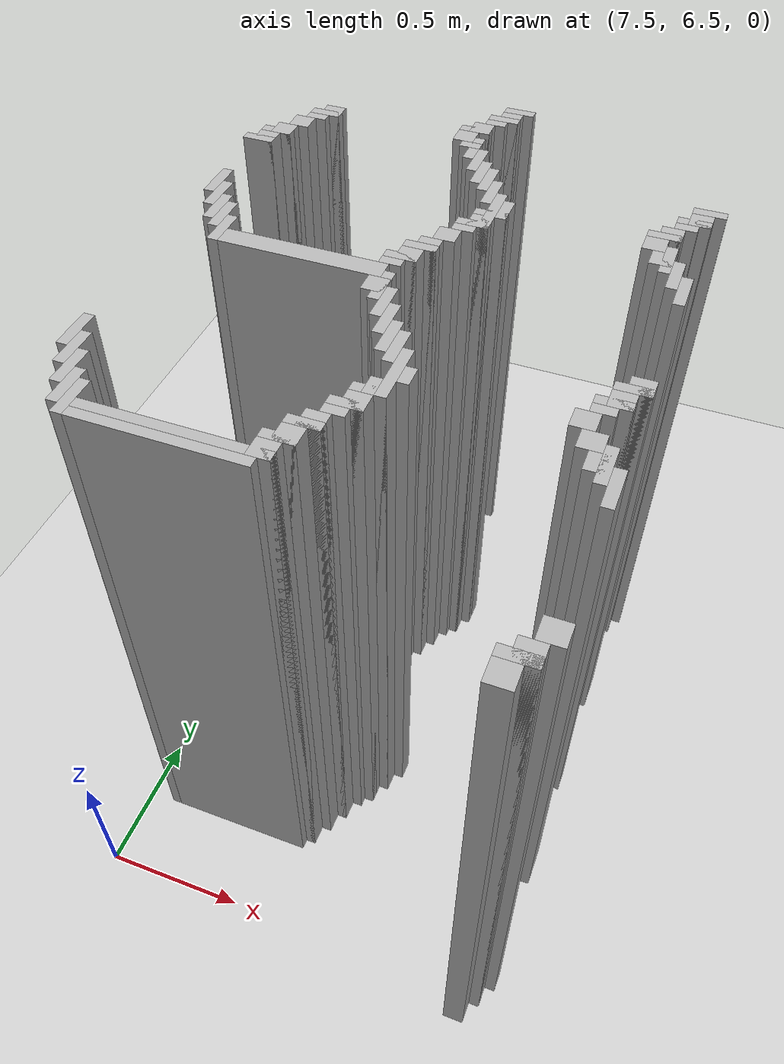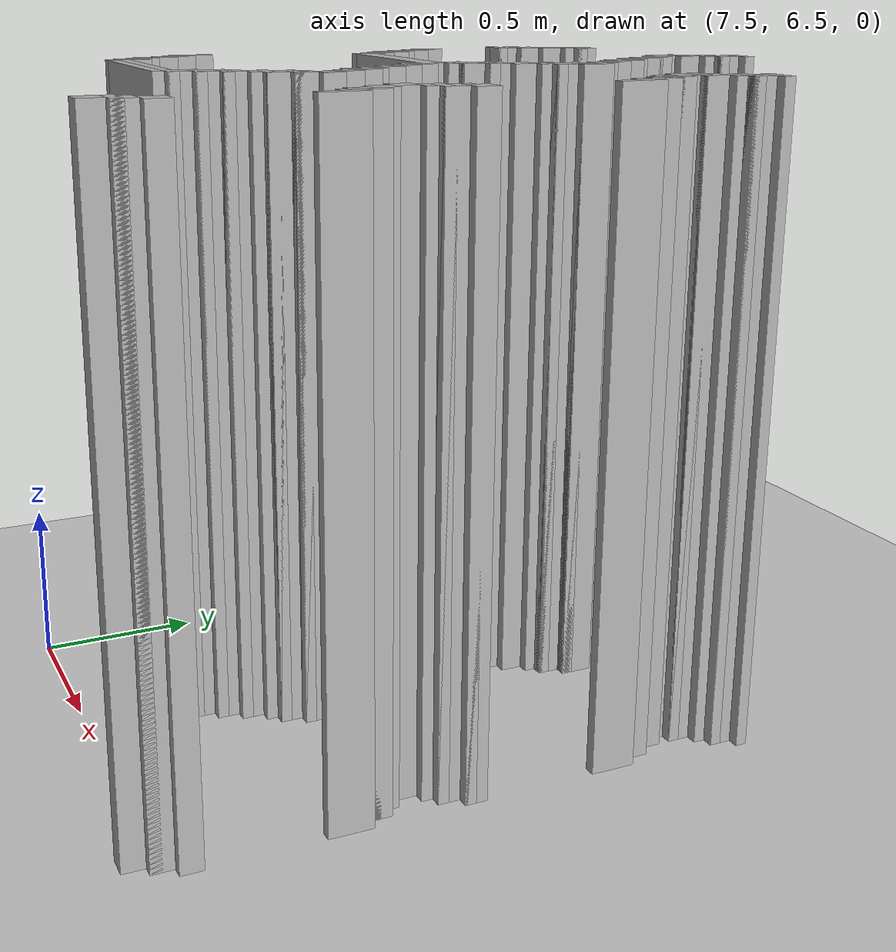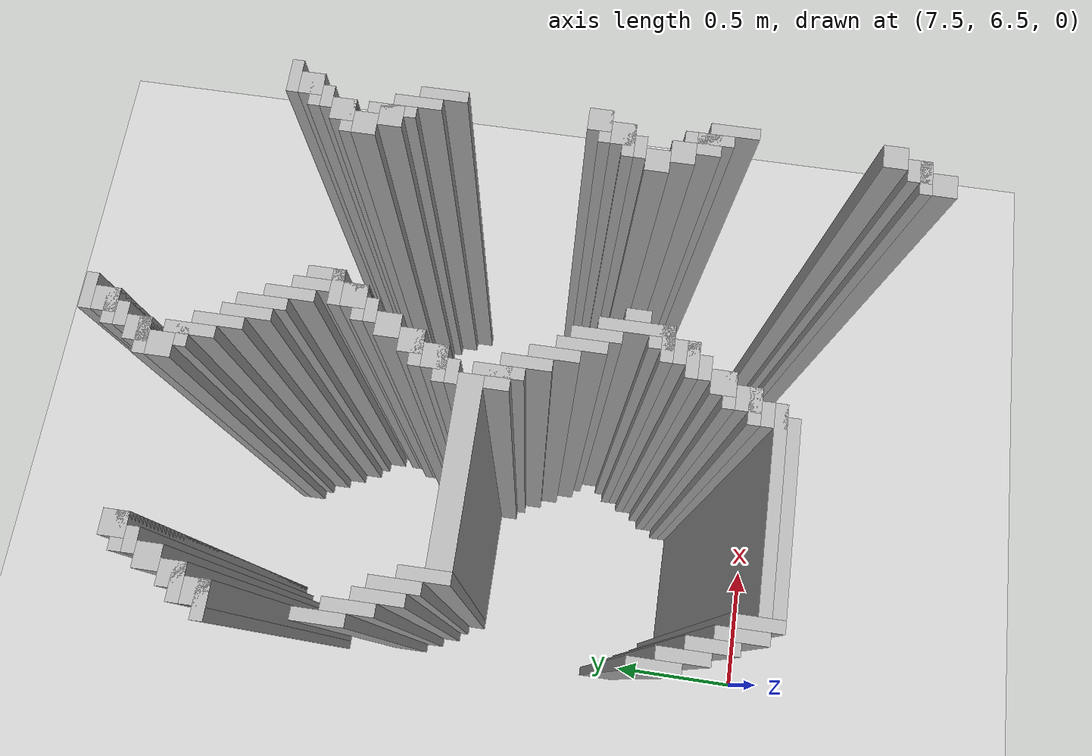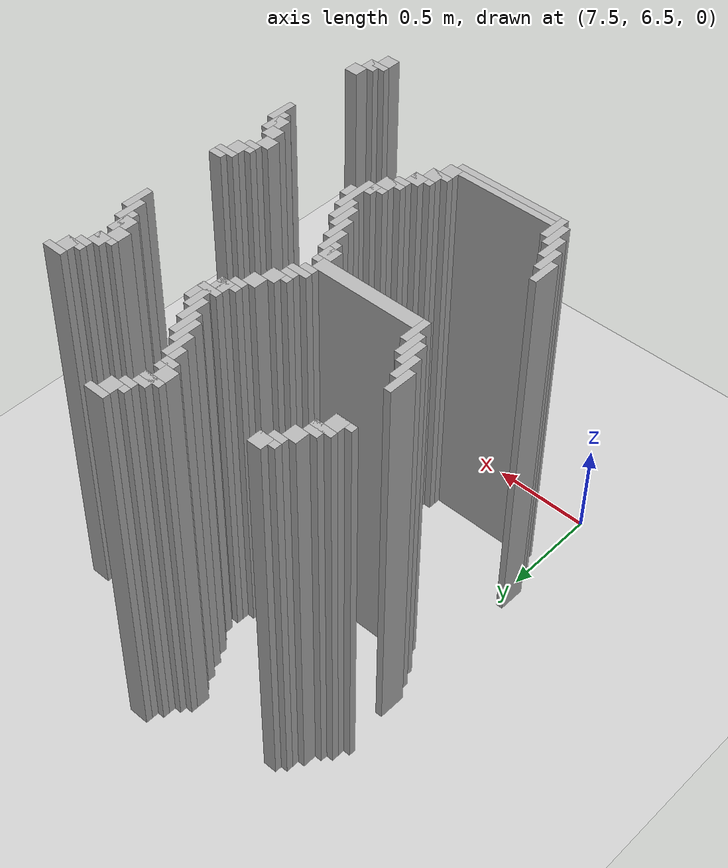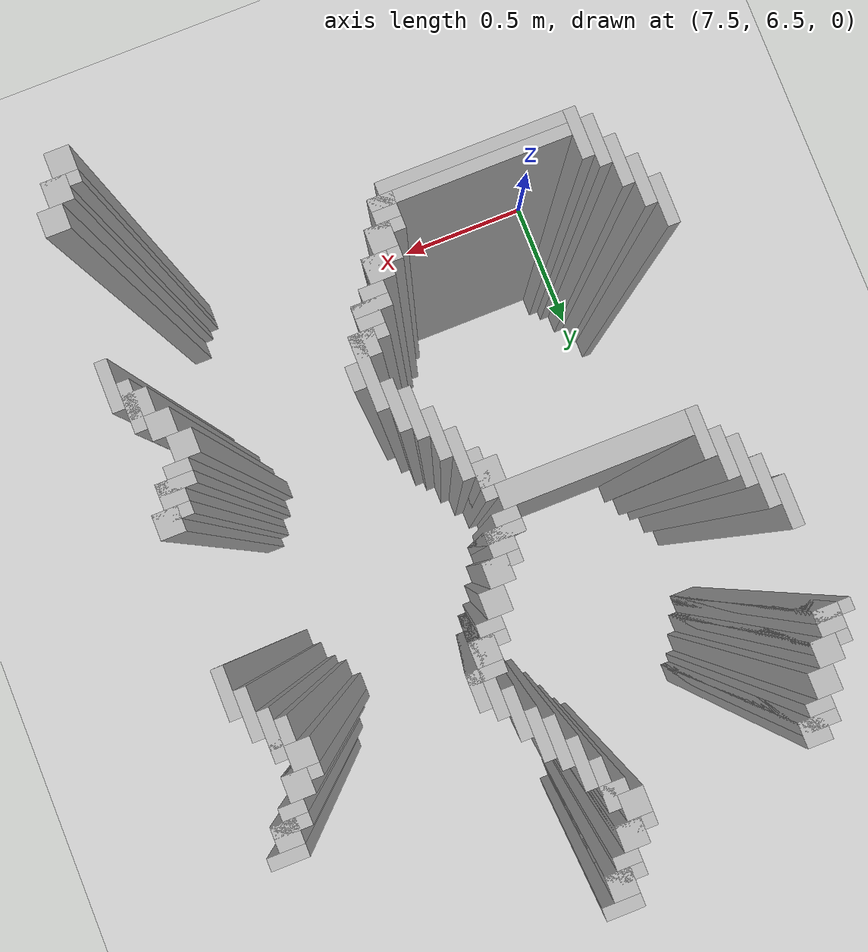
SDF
<sdf version="1.6">
 <world name="slam_world">
  <model name="ground_plane">
   <static>true</static>
   <link name="link">
    <collision name="collision">
     <geometry><plane><normal>0 0 1</normal><size>100 100</size></plane></geometry>
    </collision>
    <visual name="visual">
     <geometry><plane><normal>0 0 1</normal><size>100 100</size></plane></geometry>
     <material>
      <ambient>0.8 0.8 0.8 1</ambient>
      <diffuse>0.8 0.8 0.8 1</diffuse>
      <specular>0.8 0.8 0.8 1</specular>
     </material>
    </visual>
   </link>
  </model>
  <model name="wall_2944">
   <static>true</static>
   <pose>8.230858468677495 8.718097447795824 1.0 0 0 0</pose>
   <link name="link">
    <collision name="collision">
     <geometry><box><size>0.10440835266821345 0.03480278422273782 2.0</size></box></geometry>
    </collision>
    <visual name="visual">
     <geometry><box><size>0.10440835266821345 0.03480278422273782 2.0</size></box></geometry>
     <material><ambient>0.5 0.5 0.5 1</ambient><diffuse>0.7 0.7 0.7 1</diffuse></material>
    </visual>
   </link>
  </model>
  <model name="wall_2957">
   <static>true</static>
   <pose>8.213457076566124 8.665893271461716 1.0 0 0 0</pose>
   <link name="link">
    <collision name="collision">
     <geometry><box><size>0.06960556844547564 0.06960556844547564 2.0</size></box></geometry>
    </collision>
    <visual name="visual">
     <geometry><box><size>0.06960556844547564 0.06960556844547564 2.0</size></box></geometry>
     <material><ambient>0.5 0.5 0.5 1</ambient><diffuse>0.7 0.7 0.7 1</diffuse></material>
    </visual>
   </link>
  </model>
  <model name="wall_2969">
   <static>true</static>
   <pose>8.196055684454755 8.648491879350347 1.0 0 0 0</pose>
   <link name="link">
    <collision name="collision">
     <geometry><box><size>0.10440835266821345 0.03480278422273782 2.0</size></box></geometry>
    </collision>
    <visual name="visual">
     <geometry><box><size>0.10440835266821345 0.03480278422273782 2.0</size></box></geometry>
     <material><ambient>0.5 0.5 0.5 1</ambient><diffuse>0.7 0.7 0.7 1</diffuse></material>
    </visual>
   </link>
  </model>
  <model name="wall_2981">
   <static>true</static>
   <pose>8.178654292343387 8.61368909512761 1.0 0 0 0</pose>
   <link name="link">
    <collision name="collision">
     <geometry><box><size>0.06960556844547564 0.03480278422273782 2.0</size></box></geometry>
    </collision>
    <visual name="visual">
     <geometry><box><size>0.06960556844547564 0.03480278422273782 2.0</size></box></geometry>
     <material><ambient>0.5 0.5 0.5 1</ambient><diffuse>0.7 0.7 0.7 1</diffuse></material>
    </visual>
   </link>
  </model>
  <model name="wall_2993">
   <static>true</static>
   <pose>8.14385150812065 8.561484918793504 1.0 0 0 0</pose>
   <link name="link">
    <collision name="collision">
     <geometry><box><size>0.06960556844547564 0.06960556844547564 2.0</size></box></geometry>
    </collision>
    <visual name="visual">
     <geometry><box><size>0.06960556844547564 0.06960556844547564 2.0</size></box></geometry>
     <material><ambient>0.5 0.5 0.5 1</ambient><diffuse>0.7 0.7 0.7 1</diffuse></material>
    </visual>
   </link>
  </model>
  <model name="wall_3008">
   <static>true</static>
   <pose>8.12645011600928 8.544083526682135 1.0 0 0 0</pose>
   <link name="link">
    <collision name="collision">
     <geometry><box><size>0.10440835266821345 0.03480278422273782 2.0</size></box></geometry>
    </collision>
    <visual name="visual">
     <geometry><box><size>0.10440835266821345 0.03480278422273782 2.0</size></box></geometry>
     <material><ambient>0.5 0.5 0.5 1</ambient><diffuse>0.7 0.7 0.7 1</diffuse></material>
    </visual>
   </link>
  </model>
  <model name="wall_3020">
   <static>true</static>
   <pose>7.621809744779582 8.491879350348027 1.0 0 0 0</pose>
   <link name="link">
    <collision name="collision">
     <geometry><box><size>0.06960556844547564 0.06960556844547564 2.0</size></box></geometry>
    </collision>
    <visual name="visual">
     <geometry><box><size>0.06960556844547564 0.06960556844547564 2.0</size></box></geometry>
     <material><ambient>0.5 0.5 0.5 1</ambient><diffuse>0.7 0.7 0.7 1</diffuse></material>
    </visual>
   </link>
  </model>
  <model name="wall_3021">
   <static>true</static>
   <pose>8.109048723897912 8.491879350348027 1.0 0 0 0</pose>
   <link name="link">
    <collision name="collision">
     <geometry><box><size>0.06960556844547564 0.06960556844547564 2.0</size></box></geometry>
    </collision>
    <visual name="visual">
     <geometry><box><size>0.06960556844547564 0.06960556844547564 2.0</size></box></geometry>
     <material><ambient>0.5 0.5 0.5 1</ambient><diffuse>0.7 0.7 0.7 1</diffuse></material>
    </visual>
   </link>
  </model>
  <model name="wall_3033">
   <static>true</static>
   <pose>7.604408352668213 8.474477958236658 1.0 0 0 0</pose>
   <link name="link">
    <collision name="collision">
     <geometry><box><size>0.10440835266821345 0.03480278422273782 2.0</size></box></geometry>
    </collision>
    <visual name="visual">
     <geometry><box><size>0.10440835266821345 0.03480278422273782 2.0</size></box></geometry>
     <material><ambient>0.5 0.5 0.5 1</ambient><diffuse>0.7 0.7 0.7 1</diffuse></material>
    </visual>
   </link>
  </model>
  <model name="wall_3034">
   <static>true</static>
   <pose>8.161252900232018 8.422273781902552 1.0 0 0 0</pose>
   <link name="link">
    <collision name="collision">
     <geometry><box><size>0.03480278422273782 0.13921113689095127 2.0</size></box></geometry>
    </collision>
    <visual name="visual">
     <geometry><box><size>0.03480278422273782 0.13921113689095127 2.0</size></box></geometry>
     <material><ambient>0.5 0.5 0.5 1</ambient><diffuse>0.7 0.7 0.7 1</diffuse></material>
    </visual>
   </link>
  </model>
  <model name="wall_3048">
   <static>true</static>
   <pose>7.587006960556844 8.43967517401392 1.0 0 0 0</pose>
   <link name="link">
    <collision name="collision">
     <geometry><box><size>0.06960556844547564 0.03480278422273782 2.0</size></box></geometry>
    </collision>
    <visual name="visual">
     <geometry><box><size>0.06960556844547564 0.03480278422273782 2.0</size></box></geometry>
     <material><ambient>0.5 0.5 0.5 1</ambient><diffuse>0.7 0.7 0.7 1</diffuse></material>
    </visual>
   </link>
  </model>
  <model name="wall_3049">
   <static>true</static>
   <pose>8.14385150812065 8.43967517401392 1.0 0 0 0</pose>
   <link name="link">
    <collision name="collision">
     <geometry><box><size>0.06960556844547564 0.03480278422273782 2.0</size></box></geometry>
    </collision>
    <visual name="visual">
     <geometry><box><size>0.06960556844547564 0.03480278422273782 2.0</size></box></geometry>
     <material><ambient>0.5 0.5 0.5 1</ambient><diffuse>0.7 0.7 0.7 1</diffuse></material>
    </visual>
   </link>
  </model>
  <model name="wall_3065">
   <static>true</static>
   <pose>7.552204176334106 8.387470997679815 1.0 0 0 0</pose>
   <link name="link">
    <collision name="collision">
     <geometry><box><size>0.06960556844547564 0.06960556844547564 2.0</size></box></geometry>
    </collision>
    <visual name="visual">
     <geometry><box><size>0.06960556844547564 0.06960556844547564 2.0</size></box></geometry>
     <material><ambient>0.5 0.5 0.5 1</ambient><diffuse>0.7 0.7 0.7 1</diffuse></material>
    </visual>
   </link>
  </model>
  <model name="wall_3066">
   <static>true</static>
   <pose>8.196055684454755 8.352668213457076 1.0 0 0 0</pose>
   <link name="link">
    <collision name="collision">
     <geometry><box><size>0.03480278422273782 0.13921113689095127 2.0</size></box></geometry>
    </collision>
    <visual name="visual">
     <geometry><box><size>0.03480278422273782 0.13921113689095127 2.0</size></box></geometry>
     <material><ambient>0.5 0.5 0.5 1</ambient><diffuse>0.7 0.7 0.7 1</diffuse></material>
    </visual>
   </link>
  </model>
  <model name="wall_3082">
   <static>true</static>
   <pose>7.517401392111369 8.317865429234338 1.0 0 0 0</pose>
   <link name="link">
    <collision name="collision">
     <geometry><box><size>0.06960556844547564 0.06960556844547564 2.0</size></box></geometry>
    </collision>
    <visual name="visual">
     <geometry><box><size>0.06960556844547564 0.06960556844547564 2.0</size></box></geometry>
     <material><ambient>0.5 0.5 0.5 1</ambient><diffuse>0.7 0.7 0.7 1</diffuse></material>
    </visual>
   </link>
  </model>
  <model name="wall_3083">
   <static>true</static>
   <pose>8.230858468677495 8.2830626450116 1.0 0 0 0</pose>
   <link name="link">
    <collision name="collision">
     <geometry><box><size>0.03480278422273782 0.13921113689095127 2.0</size></box></geometry>
    </collision>
    <visual name="visual">
     <geometry><box><size>0.03480278422273782 0.13921113689095127 2.0</size></box></geometry>
     <material><ambient>0.5 0.5 0.5 1</ambient><diffuse>0.7 0.7 0.7 1</diffuse></material>
    </visual>
   </link>
  </model>
  <model name="wall_3099">
   <static>true</static>
   <pose>7.5 8.30046403712297 1.0 0 0 0</pose>
   <link name="link">
    <collision name="collision">
     <geometry><box><size>0.10440835266821345 0.03480278422273782 2.0</size></box></geometry>
    </collision>
    <visual name="visual">
     <geometry><box><size>0.10440835266821345 0.03480278422273782 2.0</size></box></geometry>
     <material><ambient>0.5 0.5 0.5 1</ambient><diffuse>0.7 0.7 0.7 1</diffuse></material>
    </visual>
   </link>
  </model>
  <model name="wall_3100">
   <static>true</static>
   <pose>8.265661252900232 8.248259860788863 1.0 0 0 0</pose>
   <link name="link">
    <collision name="collision">
     <geometry><box><size>0.03480278422273782 0.13921113689095127 2.0</size></box></geometry>
    </collision>
    <visual name="visual">
     <geometry><box><size>0.03480278422273782 0.13921113689095127 2.0</size></box></geometry>
     <material><ambient>0.5 0.5 0.5 1</ambient><diffuse>0.7 0.7 0.7 1</diffuse></material>
    </visual>
   </link>
  </model>
  <model name="wall_3101">
   <static>true</static>
   <pose>8.961716937354987 8.30046403712297 1.0 0 0 0</pose>
   <link name="link">
    <collision name="collision">
     <geometry><box><size>0.10440835266821345 0.03480278422273782 2.0</size></box></geometry>
    </collision>
    <visual name="visual">
     <geometry><box><size>0.10440835266821345 0.03480278422273782 2.0</size></box></geometry>
     <material><ambient>0.5 0.5 0.5 1</ambient><diffuse>0.7 0.7 0.7 1</diffuse></material>
    </visual>
   </link>
  </model>
  <model name="wall_3115">
   <static>true</static>
   <pose>7.48259860788863 8.248259860788863 1.0 0 0 0</pose>
   <link name="link">
    <collision name="collision">
     <geometry><box><size>0.06960556844547564 0.06960556844547564 2.0</size></box></geometry>
    </collision>
    <visual name="visual">
     <geometry><box><size>0.06960556844547564 0.06960556844547564 2.0</size></box></geometry>
     <material><ambient>0.5 0.5 0.5 1</ambient><diffuse>0.7 0.7 0.7 1</diffuse></material>
    </visual>
   </link>
  </model>
  <model name="wall_3116">
   <static>true</static>
   <pose>8.944315545243619 8.248259860788863 1.0 0 0 0</pose>
   <link name="link">
    <collision name="collision">
     <geometry><box><size>0.06960556844547564 0.06960556844547564 2.0</size></box></geometry>
    </collision>
    <visual name="visual">
     <geometry><box><size>0.06960556844547564 0.06960556844547564 2.0</size></box></geometry>
     <material><ambient>0.5 0.5 0.5 1</ambient><diffuse>0.7 0.7 0.7 1</diffuse></material>
    </visual>
   </link>
  </model>
  <model name="wall_3129">
   <static>true</static>
   <pose>7.465197215777262 8.230858468677495 1.0 0 0 0</pose>
   <link name="link">
    <collision name="collision">
     <geometry><box><size>0.10440835266821345 0.03480278422273782 2.0</size></box></geometry>
    </collision>
    <visual name="visual">
     <geometry><box><size>0.10440835266821345 0.03480278422273782 2.0</size></box></geometry>
     <material><ambient>0.5 0.5 0.5 1</ambient><diffuse>0.7 0.7 0.7 1</diffuse></material>
    </visual>
   </link>
  </model>
  <model name="wall_3130">
   <static>true</static>
   <pose>8.30046403712297 8.178654292343387 1.0 0 0 0</pose>
   <link name="link">
    <collision name="collision">
     <geometry><box><size>0.03480278422273782 0.13921113689095127 2.0</size></box></geometry>
    </collision>
    <visual name="visual">
     <geometry><box><size>0.03480278422273782 0.13921113689095127 2.0</size></box></geometry>
     <material><ambient>0.5 0.5 0.5 1</ambient><diffuse>0.7 0.7 0.7 1</diffuse></material>
    </visual>
   </link>
  </model>
  <model name="wall_3131">
   <static>true</static>
   <pose>8.92691415313225 8.230858468677495 1.0 0 0 0</pose>
   <link name="link">
    <collision name="collision">
     <geometry><box><size>0.10440835266821345 0.03480278422273782 2.0</size></box></geometry>
    </collision>
    <visual name="visual">
     <geometry><box><size>0.10440835266821345 0.03480278422273782 2.0</size></box></geometry>
     <material><ambient>0.5 0.5 0.5 1</ambient><diffuse>0.7 0.7 0.7 1</diffuse></material>
    </visual>
   </link>
  </model>
  <model name="wall_3144">
   <static>true</static>
   <pose>8.909512761020881 8.196055684454755 1.0 0 0 0</pose>
   <link name="link">
    <collision name="collision">
     <geometry><box><size>0.06960556844547564 0.03480278422273782 2.0</size></box></geometry>
    </collision>
    <visual name="visual">
     <geometry><box><size>0.06960556844547564 0.03480278422273782 2.0</size></box></geometry>
     <material><ambient>0.5 0.5 0.5 1</ambient><diffuse>0.7 0.7 0.7 1</diffuse></material>
    </visual>
   </link>
  </model>
  <model name="wall_3156">
   <static>true</static>
   <pose>8.335266821345707 8.074245939675174 1.0 0 0 0</pose>
   <link name="link">
    <collision name="collision">
     <geometry><box><size>0.03480278422273782 0.2088167053364269 2.0</size></box></geometry>
    </collision>
    <visual name="visual">
     <geometry><box><size>0.03480278422273782 0.2088167053364269 2.0</size></box></geometry>
     <material><ambient>0.5 0.5 0.5 1</ambient><diffuse>0.7 0.7 0.7 1</diffuse></material>
    </visual>
   </link>
  </model>
  <model name="wall_3157">
   <static>true</static>
   <pose>8.874709976798144 8.14385150812065 1.0 0 0 0</pose>
   <link name="link">
    <collision name="collision">
     <geometry><box><size>0.06960556844547564 0.06960556844547564 2.0</size></box></geometry>
    </collision>
    <visual name="visual">
     <geometry><box><size>0.06960556844547564 0.06960556844547564 2.0</size></box></geometry>
     <material><ambient>0.5 0.5 0.5 1</ambient><diffuse>0.7 0.7 0.7 1</diffuse></material>
    </visual>
   </link>
  </model>
  <model name="wall_3170">
   <static>true</static>
   <pose>8.370069605568444 8.091647331786543 1.0 0 0 0</pose>
   <link name="link">
    <collision name="collision">
     <geometry><box><size>0.03480278422273782 0.10440835266821345 2.0</size></box></geometry>
    </collision>
    <visual name="visual">
     <geometry><box><size>0.03480278422273782 0.10440835266821345 2.0</size></box></geometry>
     <material><ambient>0.5 0.5 0.5 1</ambient><diffuse>0.7 0.7 0.7 1</diffuse></material>
    </visual>
   </link>
  </model>
  <model name="wall_3171">
   <static>true</static>
   <pose>8.857308584686775 8.12645011600928 1.0 0 0 0</pose>
   <link name="link">
    <collision name="collision">
     <geometry><box><size>0.10440835266821345 0.03480278422273782 2.0</size></box></geometry>
    </collision>
    <visual name="visual">
     <geometry><box><size>0.10440835266821345 0.03480278422273782 2.0</size></box></geometry>
     <material><ambient>0.5 0.5 0.5 1</ambient><diffuse>0.7 0.7 0.7 1</diffuse></material>
    </visual>
   </link>
  </model>
  <model name="wall_3185">
   <static>true</static>
   <pose>8.839907192575406 8.074245939675174 1.0 0 0 0</pose>
   <link name="link">
    <collision name="collision">
     <geometry><box><size>0.06960556844547564 0.06960556844547564 2.0</size></box></geometry>
    </collision>
    <visual name="visual">
     <geometry><box><size>0.06960556844547564 0.06960556844547564 2.0</size></box></geometry>
     <material><ambient>0.5 0.5 0.5 1</ambient><diffuse>0.7 0.7 0.7 1</diffuse></material>
    </visual>
   </link>
  </model>
  <model name="wall_3198">
   <static>true</static>
   <pose>8.335266821345707 8.056844547563804 1.0 0 0 0</pose>
   <link name="link">
    <collision name="collision">
     <geometry><box><size>0.10440835266821345 0.03480278422273782 2.0</size></box></geometry>
    </collision>
    <visual name="visual">
     <geometry><box><size>0.10440835266821345 0.03480278422273782 2.0</size></box></geometry>
     <material><ambient>0.5 0.5 0.5 1</ambient><diffuse>0.7 0.7 0.7 1</diffuse></material>
    </visual>
   </link>
  </model>
  <model name="wall_3199">
   <static>true</static>
   <pose>8.892111368909513 8.004640371229698 1.0 0 0 0</pose>
   <link name="link">
    <collision name="collision">
     <geometry><box><size>0.03480278422273782 0.13921113689095127 2.0</size></box></geometry>
    </collision>
    <visual name="visual">
     <geometry><box><size>0.03480278422273782 0.13921113689095127 2.0</size></box></geometry>
     <material><ambient>0.5 0.5 0.5 1</ambient><diffuse>0.7 0.7 0.7 1</diffuse></material>
    </visual>
   </link>
  </model>
  <model name="wall_3211">
   <static>true</static>
   <pose>8.317865429234338 8.004640371229698 1.0 0 0 0</pose>
   <link name="link">
    <collision name="collision">
     <geometry><box><size>0.06960556844547564 0.06960556844547564 2.0</size></box></geometry>
    </collision>
    <visual name="visual">
     <geometry><box><size>0.06960556844547564 0.06960556844547564 2.0</size></box></geometry>
     <material><ambient>0.5 0.5 0.5 1</ambient><diffuse>0.7 0.7 0.7 1</diffuse></material>
    </visual>
   </link>
  </model>
  <model name="wall_3212">
   <static>true</static>
   <pose>8.874709976798144 8.004640371229698 1.0 0 0 0</pose>
   <link name="link">
    <collision name="collision">
     <geometry><box><size>0.06960556844547564 0.06960556844547564 2.0</size></box></geometry>
    </collision>
    <visual name="visual">
     <geometry><box><size>0.06960556844547564 0.06960556844547564 2.0</size></box></geometry>
     <material><ambient>0.5 0.5 0.5 1</ambient><diffuse>0.7 0.7 0.7 1</diffuse></material>
    </visual>
   </link>
  </model>
  <model name="wall_3223">
   <static>true</static>
   <pose>7.465197215777262 7.935034802784222 1.0 0 0 0</pose>
   <link name="link">
    <collision name="collision">
     <geometry><box><size>0.03480278422273782 0.13921113689095127 2.0</size></box></geometry>
    </collision>
    <visual name="visual">
     <geometry><box><size>0.03480278422273782 0.13921113689095127 2.0</size></box></geometry>
     <material><ambient>0.5 0.5 0.5 1</ambient><diffuse>0.7 0.7 0.7 1</diffuse></material>
    </visual>
   </link>
  </model>
  <model name="wall_3224">
   <static>true</static>
   <pose>8.30046403712297 7.987238979118329 1.0 0 0 0</pose>
   <link name="link">
    <collision name="collision">
     <geometry><box><size>0.10440835266821345 0.03480278422273782 2.0</size></box></geometry>
    </collision>
    <visual name="visual">
     <geometry><box><size>0.10440835266821345 0.03480278422273782 2.0</size></box></geometry>
     <material><ambient>0.5 0.5 0.5 1</ambient><diffuse>0.7 0.7 0.7 1</diffuse></material>
    </visual>
   </link>
  </model>
  <model name="wall_3225">
   <static>true</static>
   <pose>8.92691415313225 7.935034802784222 1.0 0 0 0</pose>
   <link name="link">
    <collision name="collision">
     <geometry><box><size>0.03480278422273782 0.13921113689095127 2.0</size></box></geometry>
    </collision>
    <visual name="visual">
     <geometry><box><size>0.03480278422273782 0.13921113689095127 2.0</size></box></geometry>
     <material><ambient>0.5 0.5 0.5 1</ambient><diffuse>0.7 0.7 0.7 1</diffuse></material>
    </visual>
   </link>
  </model>
  <model name="wall_3234">
   <static>true</static>
   <pose>8.2830626450116 7.952436194895592 1.0 0 0 0</pose>
   <link name="link">
    <collision name="collision">
     <geometry><box><size>0.06960556844547564 0.03480278422273782 2.0</size></box></geometry>
    </collision>
    <visual name="visual">
     <geometry><box><size>0.06960556844547564 0.03480278422273782 2.0</size></box></geometry>
     <material><ambient>0.5 0.5 0.5 1</ambient><diffuse>0.7 0.7 0.7 1</diffuse></material>
    </visual>
   </link>
  </model>
  <model name="wall_3241">
   <static>true</static>
   <pose>7.5 7.865429234338746 1.0 0 0 0</pose>
   <link name="link">
    <collision name="collision">
     <geometry><box><size>0.03480278422273782 0.13921113689095127 2.0</size></box></geometry>
    </collision>
    <visual name="visual">
     <geometry><box><size>0.03480278422273782 0.13921113689095127 2.0</size></box></geometry>
     <material><ambient>0.5 0.5 0.5 1</ambient><diffuse>0.7 0.7 0.7 1</diffuse></material>
    </visual>
   </link>
  </model>
  <model name="wall_3242">
   <static>true</static>
   <pose>8.248259860788863 7.900232018561485 1.0 0 0 0</pose>
   <link name="link">
    <collision name="collision">
     <geometry><box><size>0.06960556844547564 0.06960556844547564 2.0</size></box></geometry>
    </collision>
    <visual name="visual">
     <geometry><box><size>0.06960556844547564 0.06960556844547564 2.0</size></box></geometry>
     <material><ambient>0.5 0.5 0.5 1</ambient><diffuse>0.7 0.7 0.7 1</diffuse></material>
    </visual>
   </link>
  </model>
  <model name="wall_3243">
   <static>true</static>
   <pose>8.961716937354987 7.865429234338746 1.0 0 0 0</pose>
   <link name="link">
    <collision name="collision">
     <geometry><box><size>0.03480278422273782 0.13921113689095127 2.0</size></box></geometry>
    </collision>
    <visual name="visual">
     <geometry><box><size>0.03480278422273782 0.13921113689095127 2.0</size></box></geometry>
     <material><ambient>0.5 0.5 0.5 1</ambient><diffuse>0.7 0.7 0.7 1</diffuse></material>
    </visual>
   </link>
  </model>
  <model name="wall_3254">
   <static>true</static>
   <pose>7.534802784222737 7.795823665893272 1.0 0 0 0</pose>
   <link name="link">
    <collision name="collision">
     <geometry><box><size>0.03480278422273782 0.13921113689095127 2.0</size></box></geometry>
    </collision>
    <visual name="visual">
     <geometry><box><size>0.03480278422273782 0.13921113689095127 2.0</size></box></geometry>
     <material><ambient>0.5 0.5 0.5 1</ambient><diffuse>0.7 0.7 0.7 1</diffuse></material>
    </visual>
   </link>
  </model>
  <model name="wall_3255">
   <static>true</static>
   <pose>8.213457076566124 7.830626450116009 1.0 0 0 0</pose>
   <link name="link">
    <collision name="collision">
     <geometry><box><size>0.06960556844547564 0.06960556844547564 2.0</size></box></geometry>
    </collision>
    <visual name="visual">
     <geometry><box><size>0.06960556844547564 0.06960556844547564 2.0</size></box></geometry>
     <material><ambient>0.5 0.5 0.5 1</ambient><diffuse>0.7 0.7 0.7 1</diffuse></material>
    </visual>
   </link>
  </model>
  <model name="wall_3267">
   <static>true</static>
   <pose>7.569605568445476 7.761020881670533 1.0 0 0 0</pose>
   <link name="link">
    <collision name="collision">
     <geometry><box><size>0.03480278422273782 0.13921113689095127 2.0</size></box></geometry>
    </collision>
    <visual name="visual">
     <geometry><box><size>0.03480278422273782 0.13921113689095127 2.0</size></box></geometry>
     <material><ambient>0.5 0.5 0.5 1</ambient><diffuse>0.7 0.7 0.7 1</diffuse></material>
    </visual>
   </link>
  </model>
  <model name="wall_3268">
   <static>true</static>
   <pose>8.196055684454755 7.81322505800464 1.0 0 0 0</pose>
   <link name="link">
    <collision name="collision">
     <geometry><box><size>0.10440835266821345 0.03480278422273782 2.0</size></box></geometry>
    </collision>
    <visual name="visual">
     <geometry><box><size>0.10440835266821345 0.03480278422273782 2.0</size></box></geometry>
     <material><ambient>0.5 0.5 0.5 1</ambient><diffuse>0.7 0.7 0.7 1</diffuse></material>
    </visual>
   </link>
  </model>
  <model name="wall_3278">
   <static>true</static>
   <pose>8.178654292343387 7.761020881670533 1.0 0 0 0</pose>
   <link name="link">
    <collision name="collision">
     <geometry><box><size>0.06960556844547564 0.06960556844547564 2.0</size></box></geometry>
    </collision>
    <visual name="visual">
     <geometry><box><size>0.06960556844547564 0.06960556844547564 2.0</size></box></geometry>
     <material><ambient>0.5 0.5 0.5 1</ambient><diffuse>0.7 0.7 0.7 1</diffuse></material>
    </visual>
   </link>
  </model>
  <model name="wall_3285">
   <static>true</static>
   <pose>7.604408352668213 7.691415313225058 1.0 0 0 0</pose>
   <link name="link">
    <collision name="collision">
     <geometry><box><size>0.03480278422273782 0.13921113689095127 2.0</size></box></geometry>
    </collision>
    <visual name="visual">
     <geometry><box><size>0.03480278422273782 0.13921113689095127 2.0</size></box></geometry>
     <material><ambient>0.5 0.5 0.5 1</ambient><diffuse>0.7 0.7 0.7 1</diffuse></material>
    </visual>
   </link>
  </model>
  <model name="wall_3286">
   <static>true</static>
   <pose>8.161252900232018 7.743619489559165 1.0 0 0 0</pose>
   <link name="link">
    <collision name="collision">
     <geometry><box><size>0.10440835266821345 0.03480278422273782 2.0</size></box></geometry>
    </collision>
    <visual name="visual">
     <geometry><box><size>0.10440835266821345 0.03480278422273782 2.0</size></box></geometry>
     <material><ambient>0.5 0.5 0.5 1</ambient><diffuse>0.7 0.7 0.7 1</diffuse></material>
    </visual>
   </link>
  </model>
  <model name="wall_3296">
   <static>true</static>
   <pose>8.14385150812065 7.708816705336426 1.0 0 0 0</pose>
   <link name="link">
    <collision name="collision">
     <geometry><box><size>0.06960556844547564 0.03480278422273782 2.0</size></box></geometry>
    </collision>
    <visual name="visual">
     <geometry><box><size>0.06960556844547564 0.03480278422273782 2.0</size></box></geometry>
     <material><ambient>0.5 0.5 0.5 1</ambient><diffuse>0.7 0.7 0.7 1</diffuse></material>
    </visual>
   </link>
  </model>
  <model name="wall_3304">
   <static>true</static>
   <pose>7.882830626450116 7.65661252900232 1.0 0 0 0</pose>
   <link name="link">
    <collision name="collision">
     <geometry><box><size>0.5220417633410672 0.06960556844547564 2.0</size></box></geometry>
    </collision>
    <visual name="visual">
     <geometry><box><size>0.5220417633410672 0.06960556844547564 2.0</size></box></geometry>
     <material><ambient>0.5 0.5 0.5 1</ambient><diffuse>0.7 0.7 0.7 1</diffuse></material>
    </visual>
   </link>
  </model>
  <model name="wall_3317">
   <static>true</static>
   <pose>8.161252900232018 7.587006960556844 1.0 0 0 0</pose>
   <link name="link">
    <collision name="collision">
     <geometry><box><size>0.03480278422273782 0.13921113689095127 2.0</size></box></geometry>
    </collision>
    <visual name="visual">
     <geometry><box><size>0.03480278422273782 0.13921113689095127 2.0</size></box></geometry>
     <material><ambient>0.5 0.5 0.5 1</ambient><diffuse>0.7 0.7 0.7 1</diffuse></material>
    </visual>
   </link>
  </model>
  <model name="wall_3332">
   <static>true</static>
   <pose>8.14385150812065 7.587006960556844 1.0 0 0 0</pose>
   <link name="link">
    <collision name="collision">
     <geometry><box><size>0.06960556844547564 0.06960556844547564 2.0</size></box></geometry>
    </collision>
    <visual name="visual">
     <geometry><box><size>0.06960556844547564 0.06960556844547564 2.0</size></box></geometry>
     <material><ambient>0.5 0.5 0.5 1</ambient><diffuse>0.7 0.7 0.7 1</diffuse></material>
    </visual>
   </link>
  </model>
  <model name="wall_3347">
   <static>true</static>
   <pose>8.196055684454755 7.517401392111369 1.0 0 0 0</pose>
   <link name="link">
    <collision name="collision">
     <geometry><box><size>0.03480278422273782 0.13921113689095127 2.0</size></box></geometry>
    </collision>
    <visual name="visual">
     <geometry><box><size>0.03480278422273782 0.13921113689095127 2.0</size></box></geometry>
     <material><ambient>0.5 0.5 0.5 1</ambient><diffuse>0.7 0.7 0.7 1</diffuse></material>
    </visual>
   </link>
  </model>
  <model name="wall_3372">
   <static>true</static>
   <pose>8.230858468677495 7.447795823665893 1.0 0 0 0</pose>
   <link name="link">
    <collision name="collision">
     <geometry><box><size>0.03480278422273782 0.13921113689095127 2.0</size></box></geometry>
    </collision>
    <visual name="visual">
     <geometry><box><size>0.03480278422273782 0.13921113689095127 2.0</size></box></geometry>
     <material><ambient>0.5 0.5 0.5 1</ambient><diffuse>0.7 0.7 0.7 1</diffuse></material>
    </visual>
   </link>
  </model>
  <model name="wall_3387">
   <static>true</static>
   <pose>8.265661252900232 7.378190255220417 1.0 0 0 0</pose>
   <link name="link">
    <collision name="collision">
     <geometry><box><size>0.03480278422273782 0.13921113689095127 2.0</size></box></geometry>
    </collision>
    <visual name="visual">
     <geometry><box><size>0.03480278422273782 0.13921113689095127 2.0</size></box></geometry>
     <material><ambient>0.5 0.5 0.5 1</ambient><diffuse>0.7 0.7 0.7 1</diffuse></material>
    </visual>
   </link>
  </model>
  <model name="wall_3388">
   <static>true</static>
   <pose>8.944315545243619 7.412993039443156 1.0 0 0 0</pose>
   <link name="link">
    <collision name="collision">
     <geometry><box><size>0.06960556844547564 0.06960556844547564 2.0</size></box></geometry>
    </collision>
    <visual name="visual">
     <geometry><box><size>0.06960556844547564 0.06960556844547564 2.0</size></box></geometry>
     <material><ambient>0.5 0.5 0.5 1</ambient><diffuse>0.7 0.7 0.7 1</diffuse></material>
    </visual>
   </link>
  </model>
  <model name="wall_3402">
   <static>true</static>
   <pose>8.30046403712297 7.34338747099768 1.0 0 0 0</pose>
   <link name="link">
    <collision name="collision">
     <geometry><box><size>0.03480278422273782 0.13921113689095127 2.0</size></box></geometry>
    </collision>
    <visual name="visual">
     <geometry><box><size>0.03480278422273782 0.13921113689095127 2.0</size></box></geometry>
     <material><ambient>0.5 0.5 0.5 1</ambient><diffuse>0.7 0.7 0.7 1</diffuse></material>
    </visual>
   </link>
  </model>
  <model name="wall_3403">
   <static>true</static>
   <pose>8.92691415313225 7.395591647331786 1.0 0 0 0</pose>
   <link name="link">
    <collision name="collision">
     <geometry><box><size>0.10440835266821345 0.03480278422273782 2.0</size></box></geometry>
    </collision>
    <visual name="visual">
     <geometry><box><size>0.10440835266821345 0.03480278422273782 2.0</size></box></geometry>
     <material><ambient>0.5 0.5 0.5 1</ambient><diffuse>0.7 0.7 0.7 1</diffuse></material>
    </visual>
   </link>
  </model>
  <model name="wall_3413">
   <static>true</static>
   <pose>8.909512761020881 7.34338747099768 1.0 0 0 0</pose>
   <link name="link">
    <collision name="collision">
     <geometry><box><size>0.06960556844547564 0.06960556844547564 2.0</size></box></geometry>
    </collision>
    <visual name="visual">
     <geometry><box><size>0.06960556844547564 0.06960556844547564 2.0</size></box></geometry>
     <material><ambient>0.5 0.5 0.5 1</ambient><diffuse>0.7 0.7 0.7 1</diffuse></material>
    </visual>
   </link>
  </model>
  <model name="wall_3424">
   <static>true</static>
   <pose>8.335266821345707 7.238979118329466 1.0 0 0 0</pose>
   <link name="link">
    <collision name="collision">
     <geometry><box><size>0.03480278422273782 0.2088167053364269 2.0</size></box></geometry>
    </collision>
    <visual name="visual">
     <geometry><box><size>0.03480278422273782 0.2088167053364269 2.0</size></box></geometry>
     <material><ambient>0.5 0.5 0.5 1</ambient><diffuse>0.7 0.7 0.7 1</diffuse></material>
    </visual>
   </link>
  </model>
  <model name="wall_3425">
   <static>true</static>
   <pose>8.892111368909513 7.32598607888631 1.0 0 0 0</pose>
   <link name="link">
    <collision name="collision">
     <geometry><box><size>0.10440835266821345 0.03480278422273782 2.0</size></box></geometry>
    </collision>
    <visual name="visual">
     <geometry><box><size>0.10440835266821345 0.03480278422273782 2.0</size></box></geometry>
     <material><ambient>0.5 0.5 0.5 1</ambient><diffuse>0.7 0.7 0.7 1</diffuse></material>
    </visual>
   </link>
  </model>
  <model name="wall_3435">
   <static>true</static>
   <pose>8.874709976798144 7.291183294663573 1.0 0 0 0</pose>
   <link name="link">
    <collision name="collision">
     <geometry><box><size>0.06960556844547564 0.03480278422273782 2.0</size></box></geometry>
    </collision>
    <visual name="visual">
     <geometry><box><size>0.06960556844547564 0.03480278422273782 2.0</size></box></geometry>
     <material><ambient>0.5 0.5 0.5 1</ambient><diffuse>0.7 0.7 0.7 1</diffuse></material>
    </visual>
   </link>
  </model>
  <model name="wall_3444">
   <static>true</static>
   <pose>8.370069605568444 7.238979118329466 1.0 0 0 0</pose>
   <link name="link">
    <collision name="collision">
     <geometry><box><size>0.03480278422273782 0.06960556844547564 2.0</size></box></geometry>
    </collision>
    <visual name="visual">
     <geometry><box><size>0.03480278422273782 0.06960556844547564 2.0</size></box></geometry>
     <material><ambient>0.5 0.5 0.5 1</ambient><diffuse>0.7 0.7 0.7 1</diffuse></material>
    </visual>
   </link>
  </model>
  <model name="wall_3445">
   <static>true</static>
   <pose>8.839907192575406 7.238979118329466 1.0 0 0 0</pose>
   <link name="link">
    <collision name="collision">
     <geometry><box><size>0.06960556844547564 0.06960556844547564 2.0</size></box></geometry>
    </collision>
    <visual name="visual">
     <geometry><box><size>0.06960556844547564 0.06960556844547564 2.0</size></box></geometry>
     <material><ambient>0.5 0.5 0.5 1</ambient><diffuse>0.7 0.7 0.7 1</diffuse></material>
    </visual>
   </link>
  </model>
  <model name="wall_3455">
   <static>true</static>
   <pose>8.317865429234338 7.16937354988399 1.0 0 0 0</pose>
   <link name="link">
    <collision name="collision">
     <geometry><box><size>0.06960556844547564 0.06960556844547564 2.0</size></box></geometry>
    </collision>
    <visual name="visual">
     <geometry><box><size>0.06960556844547564 0.06960556844547564 2.0</size></box></geometry>
     <material><ambient>0.5 0.5 0.5 1</ambient><diffuse>0.7 0.7 0.7 1</diffuse></material>
    </visual>
   </link>
  </model>
  <model name="wall_3456">
   <static>true</static>
   <pose>8.874709976798144 7.16937354988399 1.0 0 0 0</pose>
   <link name="link">
    <collision name="collision">
     <geometry><box><size>0.06960556844547564 0.06960556844547564 2.0</size></box></geometry>
    </collision>
    <visual name="visual">
     <geometry><box><size>0.06960556844547564 0.06960556844547564 2.0</size></box></geometry>
     <material><ambient>0.5 0.5 0.5 1</ambient><diffuse>0.7 0.7 0.7 1</diffuse></material>
    </visual>
   </link>
  </model>
  <model name="wall_3467">
   <static>true</static>
   <pose>7.465197215777262 7.099767981438514 1.0 0 0 0</pose>
   <link name="link">
    <collision name="collision">
     <geometry><box><size>0.03480278422273782 0.13921113689095127 2.0</size></box></geometry>
    </collision>
    <visual name="visual">
     <geometry><box><size>0.03480278422273782 0.13921113689095127 2.0</size></box></geometry>
     <material><ambient>0.5 0.5 0.5 1</ambient><diffuse>0.7 0.7 0.7 1</diffuse></material>
    </visual>
   </link>
  </model>
  <model name="wall_3468">
   <static>true</static>
   <pose>8.30046403712297 7.151972157772621 1.0 0 0 0</pose>
   <link name="link">
    <collision name="collision">
     <geometry><box><size>0.10440835266821345 0.03480278422273782 2.0</size></box></geometry>
    </collision>
    <visual name="visual">
     <geometry><box><size>0.10440835266821345 0.03480278422273782 2.0</size></box></geometry>
     <material><ambient>0.5 0.5 0.5 1</ambient><diffuse>0.7 0.7 0.7 1</diffuse></material>
    </visual>
   </link>
  </model>
  <model name="wall_3469">
   <static>true</static>
   <pose>8.92691415313225 7.099767981438514 1.0 0 0 0</pose>
   <link name="link">
    <collision name="collision">
     <geometry><box><size>0.03480278422273782 0.13921113689095127 2.0</size></box></geometry>
    </collision>
    <visual name="visual">
     <geometry><box><size>0.03480278422273782 0.13921113689095127 2.0</size></box></geometry>
     <material><ambient>0.5 0.5 0.5 1</ambient><diffuse>0.7 0.7 0.7 1</diffuse></material>
    </visual>
   </link>
  </model>
  <model name="wall_3481">
   <static>true</static>
   <pose>8.2830626450116 7.099767981438514 1.0 0 0 0</pose>
   <link name="link">
    <collision name="collision">
     <geometry><box><size>0.06960556844547564 0.06960556844547564 2.0</size></box></geometry>
    </collision>
    <visual name="visual">
     <geometry><box><size>0.06960556844547564 0.06960556844547564 2.0</size></box></geometry>
     <material><ambient>0.5 0.5 0.5 1</ambient><diffuse>0.7 0.7 0.7 1</diffuse></material>
    </visual>
   </link>
  </model>
  <model name="wall_3482">
   <static>true</static>
   <pose>8.909512761020881 7.099767981438514 1.0 0 0 0</pose>
   <link name="link">
    <collision name="collision">
     <geometry><box><size>0.06960556844547564 0.06960556844547564 2.0</size></box></geometry>
    </collision>
    <visual name="visual">
     <geometry><box><size>0.06960556844547564 0.06960556844547564 2.0</size></box></geometry>
     <material><ambient>0.5 0.5 0.5 1</ambient><diffuse>0.7 0.7 0.7 1</diffuse></material>
    </visual>
   </link>
  </model>
  <model name="wall_3493">
   <static>true</static>
   <pose>7.5 7.03016241299304 1.0 0 0 0</pose>
   <link name="link">
    <collision name="collision">
     <geometry><box><size>0.03480278422273782 0.13921113689095127 2.0</size></box></geometry>
    </collision>
    <visual name="visual">
     <geometry><box><size>0.03480278422273782 0.13921113689095127 2.0</size></box></geometry>
     <material><ambient>0.5 0.5 0.5 1</ambient><diffuse>0.7 0.7 0.7 1</diffuse></material>
    </visual>
   </link>
  </model>
  <model name="wall_3494">
   <static>true</static>
   <pose>8.265661252900232 7.082366589327146 1.0 0 0 0</pose>
   <link name="link">
    <collision name="collision">
     <geometry><box><size>0.10440835266821345 0.03480278422273782 2.0</size></box></geometry>
    </collision>
    <visual name="visual">
     <geometry><box><size>0.10440835266821345 0.03480278422273782 2.0</size></box></geometry>
     <material><ambient>0.5 0.5 0.5 1</ambient><diffuse>0.7 0.7 0.7 1</diffuse></material>
    </visual>
   </link>
  </model>
  <model name="wall_3495">
   <static>true</static>
   <pose>8.961716937354987 7.03016241299304 1.0 0 0 0</pose>
   <link name="link">
    <collision name="collision">
     <geometry><box><size>0.03480278422273782 0.13921113689095127 2.0</size></box></geometry>
    </collision>
    <visual name="visual">
     <geometry><box><size>0.03480278422273782 0.13921113689095127 2.0</size></box></geometry>
     <material><ambient>0.5 0.5 0.5 1</ambient><diffuse>0.7 0.7 0.7 1</diffuse></material>
    </visual>
   </link>
  </model>
  <model name="wall_3503">
   <static>true</static>
   <pose>8.248259860788863 7.047563805104408 1.0 0 0 0</pose>
   <link name="link">
    <collision name="collision">
     <geometry><box><size>0.06960556844547564 0.03480278422273782 2.0</size></box></geometry>
    </collision>
    <visual name="visual">
     <geometry><box><size>0.06960556844547564 0.03480278422273782 2.0</size></box></geometry>
     <material><ambient>0.5 0.5 0.5 1</ambient><diffuse>0.7 0.7 0.7 1</diffuse></material>
    </visual>
   </link>
  </model>
  <model name="wall_3510">
   <static>true</static>
   <pose>7.534802784222737 6.960556844547564 1.0 0 0 0</pose>
   <link name="link">
    <collision name="collision">
     <geometry><box><size>0.03480278422273782 0.13921113689095127 2.0</size></box></geometry>
    </collision>
    <visual name="visual">
     <geometry><box><size>0.03480278422273782 0.13921113689095127 2.0</size></box></geometry>
     <material><ambient>0.5 0.5 0.5 1</ambient><diffuse>0.7 0.7 0.7 1</diffuse></material>
    </visual>
   </link>
  </model>
  <model name="wall_3511">
   <static>true</static>
   <pose>8.213457076566124 6.995359628770301 1.0 0 0 0</pose>
   <link name="link">
    <collision name="collision">
     <geometry><box><size>0.06960556844547564 0.06960556844547564 2.0</size></box></geometry>
    </collision>
    <visual name="visual">
     <geometry><box><size>0.06960556844547564 0.06960556844547564 2.0</size></box></geometry>
     <material><ambient>0.5 0.5 0.5 1</ambient><diffuse>0.7 0.7 0.7 1</diffuse></material>
    </visual>
   </link>
  </model>
  <model name="wall_3520">
   <static>true</static>
   <pose>8.196055684454755 6.977958236658933 1.0 0 0 0</pose>
   <link name="link">
    <collision name="collision">
     <geometry><box><size>0.10440835266821345 0.03480278422273782 2.0</size></box></geometry>
    </collision>
    <visual name="visual">
     <geometry><box><size>0.10440835266821345 0.03480278422273782 2.0</size></box></geometry>
     <material><ambient>0.5 0.5 0.5 1</ambient><diffuse>0.7 0.7 0.7 1</diffuse></material>
    </visual>
   </link>
  </model>
  <model name="wall_3527">
   <static>true</static>
   <pose>7.569605568445476 6.890951276102088 1.0 0 0 0</pose>
   <link name="link">
    <collision name="collision">
     <geometry><box><size>0.03480278422273782 0.13921113689095127 2.0</size></box></geometry>
    </collision>
    <visual name="visual">
     <geometry><box><size>0.03480278422273782 0.13921113689095127 2.0</size></box></geometry>
     <material><ambient>0.5 0.5 0.5 1</ambient><diffuse>0.7 0.7 0.7 1</diffuse></material>
    </visual>
   </link>
  </model>
  <model name="wall_3528">
   <static>true</static>
   <pose>8.178654292343387 6.9257540603248255 1.0 0 0 0</pose>
   <link name="link">
    <collision name="collision">
     <geometry><box><size>0.06960556844547564 0.06960556844547564 2.0</size></box></geometry>
    </collision>
    <visual name="visual">
     <geometry><box><size>0.06960556844547564 0.06960556844547564 2.0</size></box></geometry>
     <material><ambient>0.5 0.5 0.5 1</ambient><diffuse>0.7 0.7 0.7 1</diffuse></material>
    </visual>
   </link>
  </model>
  <model name="wall_3540">
   <static>true</static>
   <pose>7.604408352668213 6.85614849187935 1.0 0 0 0</pose>
   <link name="link">
    <collision name="collision">
     <geometry><box><size>0.03480278422273782 0.13921113689095127 2.0</size></box></geometry>
    </collision>
    <visual name="visual">
     <geometry><box><size>0.03480278422273782 0.13921113689095127 2.0</size></box></geometry>
     <material><ambient>0.5 0.5 0.5 1</ambient><diffuse>0.7 0.7 0.7 1</diffuse></material>
    </visual>
   </link>
  </model>
  <model name="wall_3541">
   <static>true</static>
   <pose>8.161252900232018 6.908352668213457 1.0 0 0 0</pose>
   <link name="link">
    <collision name="collision">
     <geometry><box><size>0.10440835266821345 0.03480278422273782 2.0</size></box></geometry>
    </collision>
    <visual name="visual">
     <geometry><box><size>0.10440835266821345 0.03480278422273782 2.0</size></box></geometry>
     <material><ambient>0.5 0.5 0.5 1</ambient><diffuse>0.7 0.7 0.7 1</diffuse></material>
    </visual>
   </link>
  </model>
  <model name="wall_3550">
   <static>true</static>
   <pose>8.14385150812065 6.85614849187935 1.0 0 0 0</pose>
   <link name="link">
    <collision name="collision">
     <geometry><box><size>0.06960556844547564 0.06960556844547564 2.0</size></box></geometry>
    </collision>
    <visual name="visual">
     <geometry><box><size>0.06960556844547564 0.06960556844547564 2.0</size></box></geometry>
     <material><ambient>0.5 0.5 0.5 1</ambient><diffuse>0.7 0.7 0.7 1</diffuse></material>
    </visual>
   </link>
  </model>
  <model name="wall_3561">
   <static>true</static>
   <pose>7.900232018561485 6.838747099767981 1.0 0 0 0</pose>
   <link name="link">
    <collision name="collision">
     <geometry><box><size>0.5568445475638051 0.03480278422273782 2.0</size></box></geometry>
    </collision>
    <visual name="visual">
     <geometry><box><size>0.5568445475638051 0.03480278422273782 2.0</size></box></geometry>
     <material><ambient>0.5 0.5 0.5 1</ambient><diffuse>0.7 0.7 0.7 1</diffuse></material>
    </visual>
   </link>
  </model>
  <model name="wall_3569">
   <static>true</static>
   <pose>7.882830626450116 6.803944315545244 1.0 0 0 0</pose>
   <link name="link">
    <collision name="collision">
     <geometry><box><size>0.5220417633410672 0.03480278422273782 2.0</size></box></geometry>
    </collision>
    <visual name="visual">
     <geometry><box><size>0.5220417633410672 0.03480278422273782 2.0</size></box></geometry>
     <material><ambient>0.5 0.5 0.5 1</ambient><diffuse>0.7 0.7 0.7 1</diffuse></material>
    </visual>
   </link>
  </model>
  <model name="wall_3645">
   <static>true</static>
   <pose>8.944315545243619 6.577726218097448 1.0 0 0 0</pose>
   <link name="link">
    <collision name="collision">
     <geometry><box><size>0.06960556844547564 0.06960556844547564 2.0</size></box></geometry>
    </collision>
    <visual name="visual">
     <geometry><box><size>0.06960556844547564 0.06960556844547564 2.0</size></box></geometry>
     <material><ambient>0.5 0.5 0.5 1</ambient><diffuse>0.7 0.7 0.7 1</diffuse></material>
    </visual>
   </link>
  </model>
  <model name="wall_3659">
   <static>true</static>
   <pose>8.909512761020881 6.508120649651972 1.0 0 0 0</pose>
   <link name="link">
    <collision name="collision">
     <geometry><box><size>0.06960556844547564 0.06960556844547564 2.0</size></box></geometry>
    </collision>
    <visual name="visual">
     <geometry><box><size>0.06960556844547564 0.06960556844547564 2.0</size></box></geometry>
     <material><ambient>0.5 0.5 0.5 1</ambient><diffuse>0.7 0.7 0.7 1</diffuse></material>
    </visual>
   </link>
  </model>
  <model name="wall_3673">
   <static>true</static>
   <pose>8.892111368909513 6.490719257540603 1.0 0 0 0</pose>
   <link name="link">
    <collision name="collision">
     <geometry><box><size>0.10440835266821345 0.03480278422273782 2.0</size></box></geometry>
    </collision>
    <visual name="visual">
     <geometry><box><size>0.10440835266821345 0.03480278422273782 2.0</size></box></geometry>
     <material><ambient>0.5 0.5 0.5 1</ambient><diffuse>0.7 0.7 0.7 1</diffuse></material>
    </visual>
   </link>
  </model>
  <model name="wall_3682">
   <static>true</static>
   <pose>8.874709976798144 6.438515081206496 1.0 0 0 0</pose>
   <link name="link">
    <collision name="collision">
     <geometry><box><size>0.06960556844547564 0.06960556844547564 2.0</size></box></geometry>
    </collision>
    <visual name="visual">
     <geometry><box><size>0.06960556844547564 0.06960556844547564 2.0</size></box></geometry>
     <material><ambient>0.5 0.5 0.5 1</ambient><diffuse>0.7 0.7 0.7 1</diffuse></material>
    </visual>
   </link>
  </model>
 </world>
</sdf>
